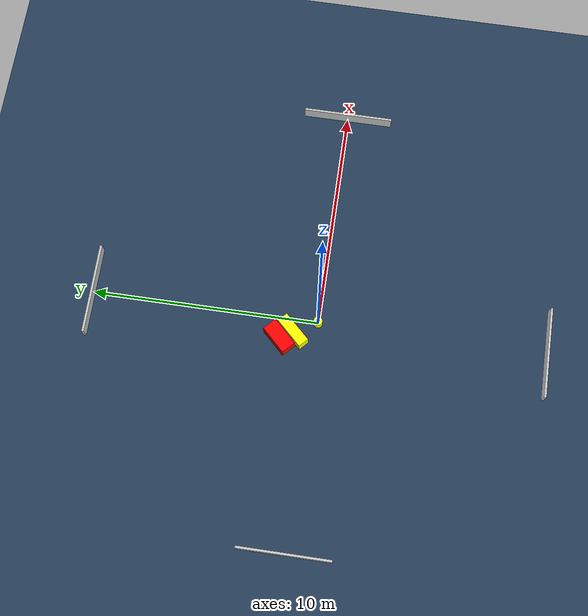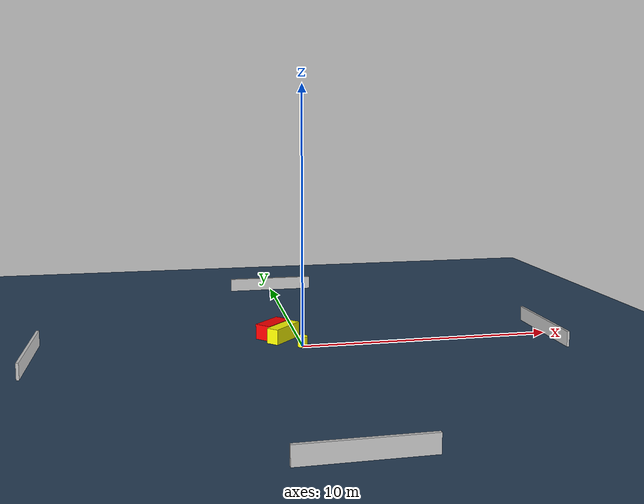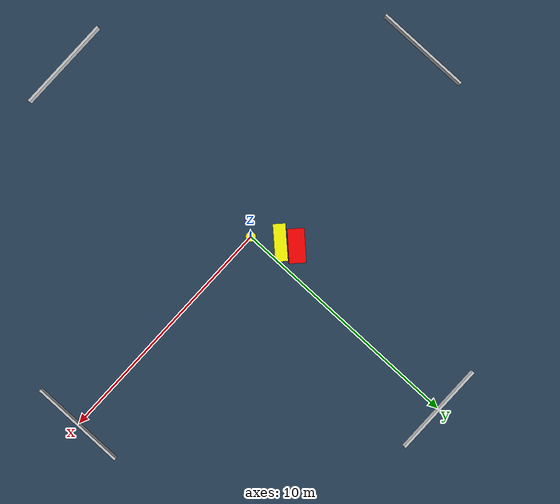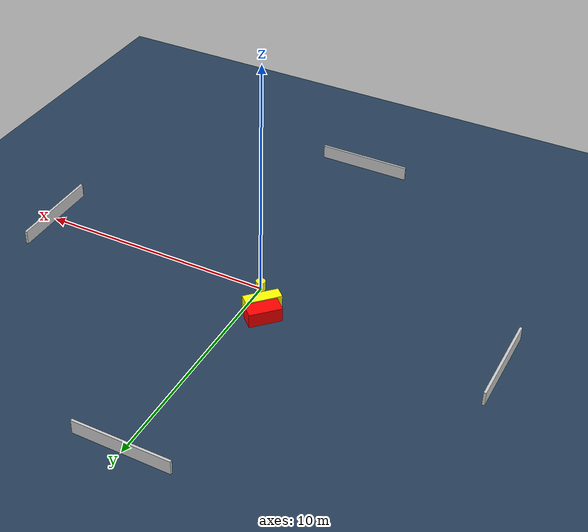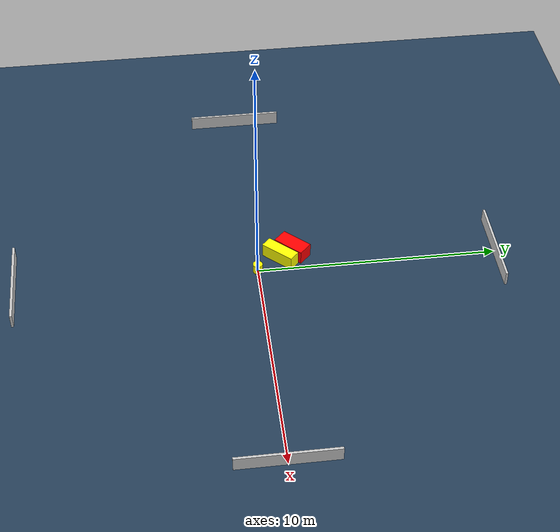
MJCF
<?xml version="1.0" ?>
<mujoco model="generated_environment">
  <option timestep="0.01" integrator="RK4" cone="elliptic"/>
  <default>
    <geom density="1"/>
  </default>
  <asset>
    <texture builtin="gradient" height="3072" name="skybox" rgb1="0.3 0.5 0.7" rgb2="0 0 0" type="skybox" width="512"/>
    <texture builtin="checker" height="300" name="groundplane" rgb1="0.2 0.3 0.4" rgb2="0.1 0.2 0.3" type="2d" width="300"/>
    <material name="groundplane" reflectance="0.2" texrepeat="5 5" texture="groundplane"/>
  </asset>
  <worldbody>
    <light dir="0 0 -1" directional="true" pos="0 0 1.5"/>
    <geom condim="3" friction="0.5 0.005 0.001" material="groundplane" name="floor" pos="0 0 0" size="0 0 0.05" type="plane"/>
    <body name="walls">
      <geom name="wall_1" condim="4" pos="-10.0 0.0 0.3" rgba="0.800000011920929 0.800000011920929 0.800000011920929 1.0" size="0.05 2.0 0.3" type="box"/>
      <geom name="wall_2" condim="4" pos="10.0 0.0 0.3" rgba="0.800000011920929 0.800000011920929 0.800000011920929 1.0" size="0.05 2.0 0.3" type="box"/>
      <geom name="wall_3" condim="4" pos="0.0 -10.0 0.3" rgba="0.800000011920929 0.800000011920929 0.800000011920929 1.0" size="2.0 0.05 0.3" type="box"/>
      <geom name="wall_4" condim="4" pos="0.0 10.0 0.3" rgba="0.800000011920929 0.800000011920929 0.800000011920929 1.0" size="2.0 0.05 0.3" type="box"/>
    </body>
    <body name="robot">
      <joint name="joint_x" type="slide" pos="0 0 0" axis="1 0 0"/>
      <joint name="joint_y" type="slide" pos="0 0 0" axis="0 1 0"/>
      <geom name="robot" type="cylinder" pos="0.0 0.0 0.2" size="0.2 0.2 0.0" mass="5.0" friction="1.0 0.005 0.0001" condim="4" rgba="1.0 1.0 0.0 1.0"/>
    </body>
    <body name="obstacle_1_movable">
      <geom name="obstacle_1_movable" condim="4" pos="-0.6051904803396445 1.0120071385745275 0.3" euler="0 0 316.58811953245754" friction="0.0 0.005 0.001" rgba="1.0 1.0 0.0 1.0" size="0.2493135786551047 0.7420489884600863 0.3" type="box" mass="0.1"/>
      <joint type="free"/>
    </body>
    <body name="obstacle_2_static">
      <geom name="obstacle_2_static" condim="4" pos="-0.9461648292407181 1.5713494284548575 0.3" euler="0 0 46.07280491856371" friction="0.0 0.005 0.001" rgba="1.0 0.0 0.0 1.0" size="0.6805553518909205 0.33652665638601703 0.3" type="box"/>
    </body>
  </worldbody>
  <actuator>
    <motor name="actuator_x" joint="joint_x" gear="1" ctrlrange="-1 1"/>
    <motor name="actuator_y" joint="joint_y" gear="1" ctrlrange="-1 1"/>
  </actuator>
</mujoco>
